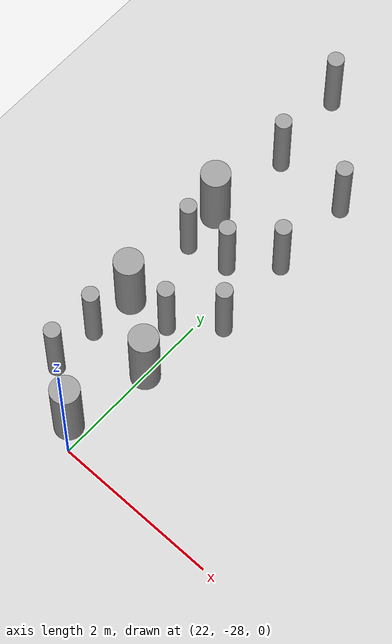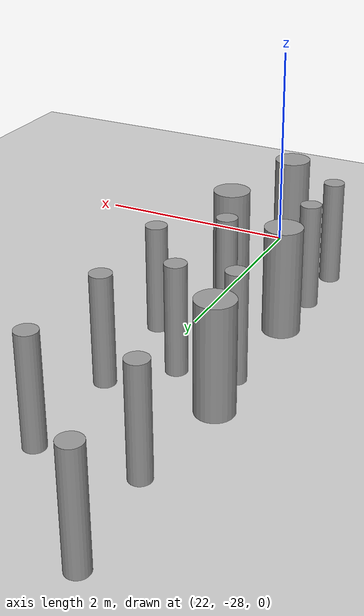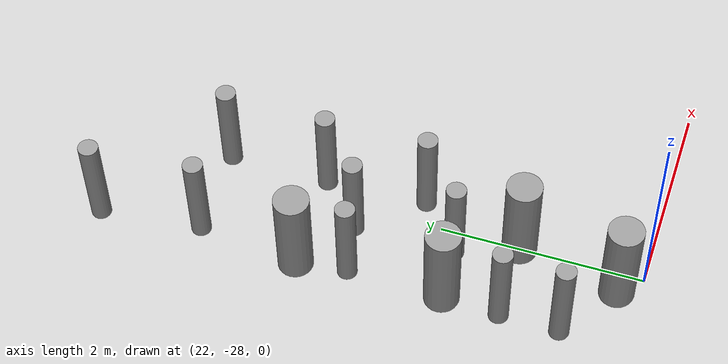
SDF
<sdf version="1.6">
 <world name="default">
  <model name="ground_plane">
   <static>1</static>
   <link name="link">
    <collision name="collision">
     <geometry><plane><normal>0 0 1</normal><size>100 100</size></plane></geometry>
     <surface><friction><ode><mu>100</mu><mu2>50</mu2></ode></friction></surface>
    </collision>
    <visual name="visual">
     <cast_shadows>0</cast_shadows>
     <geometry><plane><normal>0 0 1</normal><size>100 100</size></plane></geometry>
     <material>
      <script><uri>file://media/materials/scripts/gazebo.material</uri><name>Gazebo/Grey</name></script>
     </material>
    </visual>
   </link>
  </model>
  <model name="cyl_wall_clone_clone_1_clone_1_clone_clone_clone_clone_2">
   <link name="link_0">
    <pose>-2.73893 -0.366465 0 0 -0 0</pose>
    <inertial>
     <mass>0.0374993</mass>
     <inertia>
      <ixx>0.00321281</ixx>
      <ixy>0</ixy>
      <ixz>0</ixz>
      <iyy>0.00321281</iyy>
      <iyz>0</iyz>
      <izz>0.000175774</izz>
     </inertia>
    </inertial>
    <visual name="visual">
     <geometry><cylinder><radius>0.0968661</radius><length>1</length></cylinder></geometry>
     <material>
      <lighting>1</lighting>
      <script><uri>file://media/materials/scripts/gazebo.material</uri><name>Gazebo/Grey</name></script>
      <ambient>0.3 0.3 0.3 1</ambient>
      <diffuse>0.7 0.7 0.7 1</diffuse>
      <specular>0.01 0.01 0.01 1</specular>
      <emissive>0 0 0 1</emissive>
     </material>
    </visual>
    <collision name="collision">
     <geometry><cylinder><radius>0.096866</radius><length>1</length></cylinder></geometry>
     <surface>
      <friction>
       <ode><mu>1</mu><mu2>1</mu2><fdir1>0 0 0</fdir1><slip1>0</slip1><slip2>0</slip2></ode>
       <torsional>
        <coefficient>1</coefficient>
        <patch_radius>0</patch_radius>
        <surface_radius>0</surface_radius>
        <use_patch_radius>1</use_patch_radius>
        <ode><slip>0</slip></ode>
       </torsional>
      </friction>
      <bounce><restitution_coefficient>0</restitution_coefficient><threshold>1e+06</threshold></bounce>
      <contact>
       <collide_without_contact>0</collide_without_contact>
       <collide_without_contact_bitmask>1</collide_without_contact_bitmask>
       <collide_bitmask>1</collide_bitmask>
       <ode>
        <soft_cfm>0</soft_cfm>
        <soft_erp>0.2</soft_erp>
        <kp>1e+13</kp>
        <kd>1</kd>
        <max_vel>0.01</max_vel>
        <min_depth>0</min_depth>
       </ode>
       <bullet>
        <split_impulse>1</split_impulse>
        <split_impulse_penetration_threshold>-0.01</split_impulse_penetration_threshold>
        <soft_cfm>0</soft_cfm>
        <soft_erp>0.2</soft_erp>
        <kp>1e+13</kp>
        <kd>1</kd>
       </bullet>
      </contact>
     </surface>
    </collision>
   </link>
   <link name="link_0_clone">
    <pose>-1.73893 0.61877 0 0 -0 0</pose>
    <inertial>
     <mass>0.0374993</mass>
     <inertia>
      <ixx>0.00321281</ixx>
      <ixy>0</ixy>
      <ixz>0</ixz>
      <iyy>0.00321281</iyy>
      <iyz>0</iyz>
      <izz>0.000175774</izz>
     </inertia>
    </inertial>
    <visual name="visual">
     <geometry><cylinder><radius>0.0968661</radius><length>1</length></cylinder></geometry>
     <material>
      <lighting>1</lighting>
      <script><uri>file://media/materials/scripts/gazebo.material</uri><name>Gazebo/Grey</name></script>
      <ambient>0.3 0.3 0.3 1</ambient>
      <diffuse>0.7 0.7 0.7 1</diffuse>
      <specular>0.01 0.01 0.01 1</specular>
      <emissive>0 0 0 1</emissive>
      <shader type="pixel"/>
     </material>
    </visual>
    <collision name="collision">
     <geometry><cylinder><radius>0.096866</radius><length>1</length></cylinder></geometry>
     <surface>
      <friction>
       <ode><mu>1</mu><mu2>1</mu2><fdir1>0 0 0</fdir1><slip1>0</slip1><slip2>0</slip2></ode>
       <torsional>
        <coefficient>1</coefficient>
        <patch_radius>0</patch_radius>
        <surface_radius>0</surface_radius>
        <use_patch_radius>1</use_patch_radius>
        <ode><slip>0</slip></ode>
       </torsional>
      </friction>
      <bounce><restitution_coefficient>0</restitution_coefficient><threshold>1e+06</threshold></bounce>
      <contact>
       <collide_without_contact>0</collide_without_contact>
       <collide_without_contact_bitmask>1</collide_without_contact_bitmask>
       <collide_bitmask>1</collide_bitmask>
       <ode>
        <soft_cfm>0</soft_cfm>
        <soft_erp>0.2</soft_erp>
        <kp>1e+13</kp>
        <kd>1</kd>
        <max_vel>0.01</max_vel>
        <min_depth>0</min_depth>
       </ode>
       <bullet>
        <split_impulse>1</split_impulse>
        <split_impulse_penetration_threshold>-0.01</split_impulse_penetration_threshold>
        <soft_cfm>0</soft_cfm>
        <soft_erp>0.2</soft_erp>
        <kp>1e+13</kp>
        <kd>1</kd>
       </bullet>
      </contact>
     </surface>
    </collision>
   </link>
   <link name="link_0_clone_clone">
    <pose>-0.327073 0.143919 0 0 -0 0</pose>
    <inertial>
     <mass>0.0374993</mass>
     <inertia>
      <ixx>0.00321281</ixx>
      <ixy>0</ixy>
      <ixz>0</ixz>
      <iyy>0.00321281</iyy>
      <iyz>0</iyz>
      <izz>0.000175774</izz>
     </inertia>
    </inertial>
    <visual name="visual">
     <geometry><cylinder><radius>0.0968661</radius><length>1</length></cylinder></geometry>
     <material>
      <lighting>1</lighting>
      <script><uri>file://media/materials/scripts/gazebo.material</uri><name>Gazebo/Grey</name></script>
      <ambient>0.3 0.3 0.3 1</ambient>
      <diffuse>0.7 0.7 0.7 1</diffuse>
      <specular>0.01 0.01 0.01 1</specular>
      <emissive>0 0 0 1</emissive>
      <shader type="pixel"/>
     </material>
    </visual>
    <collision name="collision">
     <geometry><cylinder><radius>0.096866</radius><length>1</length></cylinder></geometry>
     <surface>
      <friction>
       <ode><mu>1</mu><mu2>1</mu2><fdir1>0 0 0</fdir1><slip1>0</slip1><slip2>0</slip2></ode>
       <torsional>
        <coefficient>1</coefficient>
        <patch_radius>0</patch_radius>
        <surface_radius>0</surface_radius>
        <use_patch_radius>1</use_patch_radius>
        <ode><slip>0</slip></ode>
       </torsional>
      </friction>
      <bounce><restitution_coefficient>0</restitution_coefficient><threshold>1e+06</threshold></bounce>
      <contact>
       <collide_without_contact>0</collide_without_contact>
       <collide_without_contact_bitmask>1</collide_without_contact_bitmask>
       <collide_bitmask>1</collide_bitmask>
       <ode>
        <soft_cfm>0</soft_cfm>
        <soft_erp>0.2</soft_erp>
        <kp>1e+13</kp>
        <kd>1</kd>
        <max_vel>0.01</max_vel>
        <min_depth>0</min_depth>
       </ode>
       <bullet>
        <split_impulse>1</split_impulse>
        <split_impulse_penetration_threshold>-0.01</split_impulse_penetration_threshold>
        <soft_cfm>0</soft_cfm>
        <soft_erp>0.2</soft_erp>
        <kp>1e+13</kp>
        <kd>1</kd>
       </bullet>
      </contact>
     </surface>
    </collision>
   </link>
   <link name="link_0_clone_clone_0">
    <pose>1.26107 -0.419359 0 0 -0 0</pose>
    <inertial>
     <mass>0.0374993</mass>
     <inertia>
      <ixx>0.00321281</ixx>
      <ixy>0</ixy>
      <ixz>0</ixz>
      <iyy>0.00321281</iyy>
      <iyz>0</iyz>
      <izz>0.000175774</izz>
     </inertia>
    </inertial>
    <visual name="visual">
     <geometry><cylinder><radius>0.0968661</radius><length>1</length></cylinder></geometry>
     <material>
      <lighting>1</lighting>
      <script><uri>file://media/materials/scripts/gazebo.material</uri><name>Gazebo/Grey</name></script>
      <ambient>0.3 0.3 0.3 1</ambient>
      <diffuse>0.7 0.7 0.7 1</diffuse>
      <specular>0.01 0.01 0.01 1</specular>
      <emissive>0 0 0 1</emissive>
      <shader type="pixel"/>
     </material>
    </visual>
    <collision name="collision">
     <geometry><cylinder><radius>0.096866</radius><length>1</length></cylinder></geometry>
     <surface>
      <friction>
       <ode><mu>1</mu><mu2>1</mu2><fdir1>0 0 0</fdir1><slip1>0</slip1><slip2>0</slip2></ode>
       <torsional>
        <coefficient>1</coefficient>
        <patch_radius>0</patch_radius>
        <surface_radius>0</surface_radius>
        <use_patch_radius>1</use_patch_radius>
        <ode><slip>0</slip></ode>
       </torsional>
      </friction>
      <bounce><restitution_coefficient>0</restitution_coefficient><threshold>1e+06</threshold></bounce>
      <contact>
       <collide_without_contact>0</collide_without_contact>
       <collide_without_contact_bitmask>1</collide_without_contact_bitmask>
       <collide_bitmask>1</collide_bitmask>
       <ode>
        <soft_cfm>0</soft_cfm>
        <soft_erp>0.2</soft_erp>
        <kp>1e+13</kp>
        <kd>1</kd>
        <max_vel>0.01</max_vel>
        <min_depth>0</min_depth>
       </ode>
       <bullet>
        <split_impulse>1</split_impulse>
        <split_impulse_penetration_threshold>-0.01</split_impulse_penetration_threshold>
        <soft_cfm>0</soft_cfm>
        <soft_erp>0.2</soft_erp>
        <kp>1e+13</kp>
        <kd>1</kd>
       </bullet>
      </contact>
     </surface>
    </collision>
   </link>
   <link name="link_0_clone_clone_1">
    <pose>-1.73893 -0.277168 0 0 -0 0</pose>
    <inertial>
     <mass>0.0374993</mass>
     <inertia>
      <ixx>0.00321281</ixx>
      <ixy>0</ixy>
      <ixz>0</ixz>
      <iyy>0.00321281</iyy>
      <iyz>0</iyz>
      <izz>0.000175774</izz>
     </inertia>
    </inertial>
    <visual name="visual">
     <geometry><cylinder><radius>0.0968661</radius><length>1</length></cylinder></geometry>
     <material>
      <lighting>1</lighting>
      <script><uri>file://media/materials/scripts/gazebo.material</uri><name>Gazebo/Grey</name></script>
      <ambient>0.3 0.3 0.3 1</ambient>
      <diffuse>0.7 0.7 0.7 1</diffuse>
      <specular>0.01 0.01 0.01 1</specular>
      <emissive>0 0 0 1</emissive>
      <shader type="pixel"/>
     </material>
    </visual>
    <collision name="collision">
     <geometry><cylinder><radius>0.096866</radius><length>1</length></cylinder></geometry>
     <surface>
      <friction>
       <ode><mu>1</mu><mu2>1</mu2><fdir1>0 0 0</fdir1><slip1>0</slip1><slip2>0</slip2></ode>
       <torsional>
        <coefficient>1</coefficient>
        <patch_radius>0</patch_radius>
        <surface_radius>0</surface_radius>
        <use_patch_radius>1</use_patch_radius>
        <ode><slip>0</slip></ode>
       </torsional>
      </friction>
      <bounce><restitution_coefficient>0</restitution_coefficient><threshold>1e+06</threshold></bounce>
      <contact>
       <collide_without_contact>0</collide_without_contact>
       <collide_without_contact_bitmask>1</collide_without_contact_bitmask>
       <collide_bitmask>1</collide_bitmask>
       <ode>
        <soft_cfm>0</soft_cfm>
        <soft_erp>0.2</soft_erp>
        <kp>1e+13</kp>
        <kd>1</kd>
        <max_vel>0.01</max_vel>
        <min_depth>0</min_depth>
       </ode>
       <bullet>
        <split_impulse>1</split_impulse>
        <split_impulse_penetration_threshold>-0.01</split_impulse_penetration_threshold>
        <soft_cfm>0</soft_cfm>
        <soft_erp>0.2</soft_erp>
        <kp>1e+13</kp>
        <kd>1</kd>
       </bullet>
      </contact>
     </surface>
    </collision>
   </link>
   <link name="link_0_clone_clone_2">
    <pose>-0.738934 0.593961 0 0 -0 0</pose>
    <inertial>
     <mass>0.0374993</mass>
     <inertia>
      <ixx>0.00321281</ixx>
      <ixy>0</ixy>
      <ixz>0</ixz>
      <iyy>0.00321281</iyy>
      <iyz>0</iyz>
      <izz>0.000175774</izz>
     </inertia>
    </inertial>
    <visual name="visual">
     <geometry><cylinder><radius>0.0968661</radius><length>1</length></cylinder></geometry>
     <material>
      <lighting>1</lighting>
      <script><uri>file://media/materials/scripts/gazebo.material</uri><name>Gazebo/Grey</name></script>
      <ambient>0.3 0.3 0.3 1</ambient>
      <diffuse>0.7 0.7 0.7 1</diffuse>
      <specular>0.01 0.01 0.01 1</specular>
      <emissive>0 0 0 1</emissive>
      <shader type="pixel"/>
     </material>
    </visual>
    <collision name="collision">
     <geometry><cylinder><radius>0.096866</radius><length>1</length></cylinder></geometry>
     <surface>
      <friction>
       <ode><mu>1</mu><mu2>1</mu2><fdir1>0 0 0</fdir1><slip1>0</slip1><slip2>0</slip2></ode>
       <torsional>
        <coefficient>1</coefficient>
        <patch_radius>0</patch_radius>
        <surface_radius>0</surface_radius>
        <use_patch_radius>1</use_patch_radius>
        <ode><slip>0</slip></ode>
       </torsional>
      </friction>
      <bounce><restitution_coefficient>0</restitution_coefficient><threshold>1e+06</threshold></bounce>
      <contact>
       <collide_without_contact>0</collide_without_contact>
       <collide_without_contact_bitmask>1</collide_without_contact_bitmask>
       <collide_bitmask>1</collide_bitmask>
       <ode>
        <soft_cfm>0</soft_cfm>
        <soft_erp>0.2</soft_erp>
        <kp>1e+13</kp>
        <kd>1</kd>
        <max_vel>0.01</max_vel>
        <min_depth>0</min_depth>
       </ode>
       <bullet>
        <split_impulse>1</split_impulse>
        <split_impulse_penetration_threshold>-0.01</split_impulse_penetration_threshold>
        <soft_cfm>0</soft_cfm>
        <soft_erp>0.2</soft_erp>
        <kp>1e+13</kp>
        <kd>1</kd>
       </bullet>
      </contact>
     </surface>
    </collision>
   </link>
   <link name="link_0_clone_clone_3">
    <pose>0.261066 0.624849 0 0 -0 0</pose>
    <inertial>
     <mass>0.0374993</mass>
     <inertia>
      <ixx>0.00321281</ixx>
      <ixy>0</ixy>
      <ixz>0</ixz>
      <iyy>0.00321281</iyy>
      <iyz>0</iyz>
      <izz>0.000175774</izz>
     </inertia>
    </inertial>
    <visual name="visual">
     <geometry><cylinder><radius>0.0968661</radius><length>1</length></cylinder></geometry>
     <material>
      <lighting>1</lighting>
      <script><uri>file://media/materials/scripts/gazebo.material</uri><name>Gazebo/Grey</name></script>
      <ambient>0.3 0.3 0.3 1</ambient>
      <diffuse>0.7 0.7 0.7 1</diffuse>
      <specular>0.01 0.01 0.01 1</specular>
      <emissive>0 0 0 1</emissive>
      <shader type="pixel"/>
     </material>
    </visual>
    <collision name="collision">
     <geometry><cylinder><radius>0.096866</radius><length>1</length></cylinder></geometry>
     <surface>
      <friction>
       <ode><mu>1</mu><mu2>1</mu2><fdir1>0 0 0</fdir1><slip1>0</slip1><slip2>0</slip2></ode>
       <torsional>
        <coefficient>1</coefficient>
        <patch_radius>0</patch_radius>
        <surface_radius>0</surface_radius>
        <use_patch_radius>1</use_patch_radius>
        <ode><slip>0</slip></ode>
       </torsional>
      </friction>
      <bounce><restitution_coefficient>0</restitution_coefficient><threshold>1e+06</threshold></bounce>
      <contact>
       <collide_without_contact>0</collide_without_contact>
       <collide_without_contact_bitmask>1</collide_without_contact_bitmask>
       <collide_bitmask>1</collide_bitmask>
       <ode>
        <soft_cfm>0</soft_cfm>
        <soft_erp>0.2</soft_erp>
        <kp>1e+13</kp>
        <kd>1</kd>
        <max_vel>0.01</max_vel>
        <min_depth>0</min_depth>
       </ode>
       <bullet>
        <split_impulse>1</split_impulse>
        <split_impulse_penetration_threshold>-0.01</split_impulse_penetration_threshold>
        <soft_cfm>0</soft_cfm>
        <soft_erp>0.2</soft_erp>
        <kp>1e+13</kp>
        <kd>1</kd>
       </bullet>
      </contact>
     </surface>
    </collision>
   </link>
   <link name="link_0_clone_clone_4">
    <pose>-0.239049 -0.353105 0 0 -0 0</pose>
    <inertial>
     <mass>0.0374993</mass>
     <inertia>
      <ixx>0.00321281</ixx>
      <ixy>0</ixy>
      <ixz>0</ixz>
      <iyy>0.00321281</iyy>
      <iyz>0</iyz>
      <izz>0.000175774</izz>
     </inertia>
    </inertial>
    <visual name="visual">
     <geometry><cylinder><radius>0.0968661</radius><length>1</length></cylinder></geometry>
     <material>
      <lighting>1</lighting>
      <script><uri>file://media/materials/scripts/gazebo.material</uri><name>Gazebo/Grey</name></script>
      <ambient>0.3 0.3 0.3 1</ambient>
      <diffuse>0.7 0.7 0.7 1</diffuse>
      <specular>0.01 0.01 0.01 1</specular>
      <emissive>0 0 0 1</emissive>
      <shader type="pixel"/>
     </material>
    </visual>
    <collision name="collision">
     <geometry><cylinder><radius>0.096866</radius><length>1</length></cylinder></geometry>
     <surface>
      <friction>
       <ode><mu>1</mu><mu2>1</mu2><fdir1>0 0 0</fdir1><slip1>0</slip1><slip2>0</slip2></ode>
       <torsional>
        <coefficient>1</coefficient>
        <patch_radius>0</patch_radius>
        <surface_radius>0</surface_radius>
        <use_patch_radius>1</use_patch_radius>
        <ode><slip>0</slip></ode>
       </torsional>
      </friction>
      <bounce><restitution_coefficient>0</restitution_coefficient><threshold>1e+06</threshold></bounce>
      <contact>
       <collide_without_contact>0</collide_without_contact>
       <collide_without_contact_bitmask>1</collide_without_contact_bitmask>
       <collide_bitmask>1</collide_bitmask>
       <ode>
        <soft_cfm>0</soft_cfm>
        <soft_erp>0.2</soft_erp>
        <kp>1e+13</kp>
        <kd>1</kd>
        <max_vel>0.01</max_vel>
        <min_depth>0</min_depth>
       </ode>
       <bullet>
        <split_impulse>1</split_impulse>
        <split_impulse_penetration_threshold>-0.01</split_impulse_penetration_threshold>
        <soft_cfm>0</soft_cfm>
        <soft_erp>0.2</soft_erp>
        <kp>1e+13</kp>
        <kd>1</kd>
       </bullet>
      </contact>
     </surface>
    </collision>
   </link>
   <link name="link_0_clone_clone_5">
    <pose>0.672792 0.143919 0 0 -0 0</pose>
    <inertial>
     <mass>0.0374993</mass>
     <inertia>
      <ixx>0.00321281</ixx>
      <ixy>0</ixy>
      <ixz>0</ixz>
      <iyy>0.00321281</iyy>
      <iyz>0</iyz>
      <izz>0.000175774</izz>
     </inertia>
    </inertial>
    <visual name="visual">
     <geometry><cylinder><radius>0.0968661</radius><length>1</length></cylinder></geometry>
     <material>
      <lighting>1</lighting>
      <script><uri>file://media/materials/scripts/gazebo.material</uri><name>Gazebo/Grey</name></script>
      <ambient>0.3 0.3 0.3 1</ambient>
      <diffuse>0.7 0.7 0.7 1</diffuse>
      <specular>0.01 0.01 0.01 1</specular>
      <emissive>0 0 0 1</emissive>
      <shader type="pixel"/>
     </material>
    </visual>
    <collision name="collision">
     <geometry><cylinder><radius>0.096866</radius><length>1</length></cylinder></geometry>
     <surface>
      <friction>
       <ode><mu>1</mu><mu2>1</mu2><fdir1>0 0 0</fdir1><slip1>0</slip1><slip2>0</slip2></ode>
       <torsional>
        <coefficient>1</coefficient>
        <patch_radius>0</patch_radius>
        <surface_radius>0</surface_radius>
        <use_patch_radius>1</use_patch_radius>
        <ode><slip>0</slip></ode>
       </torsional>
      </friction>
      <bounce><restitution_coefficient>0</restitution_coefficient><threshold>1e+06</threshold></bounce>
      <contact>
       <collide_without_contact>0</collide_without_contact>
       <collide_without_contact_bitmask>1</collide_without_contact_bitmask>
       <collide_bitmask>1</collide_bitmask>
       <ode>
        <soft_cfm>0</soft_cfm>
        <soft_erp>0.2</soft_erp>
        <kp>1e+13</kp>
        <kd>1</kd>
        <max_vel>0.01</max_vel>
        <min_depth>0</min_depth>
       </ode>
       <bullet>
        <split_impulse>1</split_impulse>
        <split_impulse_penetration_threshold>-0.01</split_impulse_penetration_threshold>
        <soft_cfm>0</soft_cfm>
        <soft_erp>0.2</soft_erp>
        <kp>1e+13</kp>
        <kd>1</kd>
       </bullet>
      </contact>
     </surface>
    </collision>
   </link>
   <link name="link_0_clone_clone_6">
    <pose>1.84596 -0.433423 0 0 -0 0</pose>
    <inertial>
     <mass>0.0374993</mass>
     <inertia>
      <ixx>0.00321281</ixx>
      <ixy>0</ixy>
      <ixz>0</ixz>
      <iyy>0.00321281</iyy>
      <iyz>0</iyz>
      <izz>0.000175774</izz>
     </inertia>
    </inertial>
    <visual name="visual">
     <geometry><cylinder><radius>0.0968661</radius><length>1</length></cylinder></geometry>
     <material>
      <lighting>1</lighting>
      <script><uri>file://media/materials/scripts/gazebo.material</uri><name>Gazebo/Grey</name></script>
      <ambient>0.3 0.3 0.3 1</ambient>
      <diffuse>0.7 0.7 0.7 1</diffuse>
      <specular>0.01 0.01 0.01 1</specular>
      <emissive>0 0 0 1</emissive>
      <shader type="pixel"/>
     </material>
    </visual>
    <collision name="collision">
     <geometry><cylinder><radius>0.096866</radius><length>1</length></cylinder></geometry>
     <surface>
      <friction>
       <ode><mu>1</mu><mu2>1</mu2><fdir1>0 0 0</fdir1><slip1>0</slip1><slip2>0</slip2></ode>
       <torsional>
        <coefficient>1</coefficient>
        <patch_radius>0</patch_radius>
        <surface_radius>0</surface_radius>
        <use_patch_radius>1</use_patch_radius>
        <ode><slip>0</slip></ode>
       </torsional>
      </friction>
      <bounce><restitution_coefficient>0</restitution_coefficient><threshold>1e+06</threshold></bounce>
      <contact>
       <collide_without_contact>0</collide_without_contact>
       <collide_without_contact_bitmask>1</collide_without_contact_bitmask>
       <collide_bitmask>1</collide_bitmask>
       <ode>
        <soft_cfm>0</soft_cfm>
        <soft_erp>0.2</soft_erp>
        <kp>1e+13</kp>
        <kd>1</kd>
        <max_vel>0.01</max_vel>
        <min_depth>0</min_depth>
       </ode>
       <bullet>
        <split_impulse>1</split_impulse>
        <split_impulse_penetration_threshold>-0.01</split_impulse_penetration_threshold>
        <soft_cfm>0</soft_cfm>
        <soft_erp>0.2</soft_erp>
        <kp>1e+13</kp>
        <kd>1</kd>
       </bullet>
      </contact>
     </surface>
    </collision>
   </link>
   <link name="link_1">
    <pose>-0.738934 -0.397931 0 0 -0 0</pose>
    <inertial>
     <mass>0.117398</mass>
     <inertia>
      <ixx>0.0106445</ixx>
      <ixy>0</ixy>
      <ixz>0</ixz>
      <iyy>0.0106445</iyy>
      <iyz>0</iyz>
      <izz>0.00172278</izz>
     </inertia>
    </inertial>
    <visual name="visual">
     <geometry><cylinder><radius>0.171317</radius><length>1</length></cylinder></geometry>
     <material>
      <lighting>1</lighting>
      <script><uri>file://media/materials/scripts/gazebo.material</uri><name>Gazebo/Grey</name></script>
      <ambient>0.3 0.3 0.3 1</ambient>
      <diffuse>0.7 0.7 0.7 1</diffuse>
      <specular>0.01 0.01 0.01 1</specular>
      <emissive>0 0 0 1</emissive>
     </material>
    </visual>
    <collision name="collision">
     <geometry><cylinder><radius>0.171317</radius><length>1</length></cylinder></geometry>
     <surface>
      <friction>
       <ode><mu>1</mu><mu2>1</mu2><fdir1>0 0 0</fdir1><slip1>0</slip1><slip2>0</slip2></ode>
       <torsional>
        <coefficient>1</coefficient>
        <patch_radius>0</patch_radius>
        <surface_radius>0</surface_radius>
        <use_patch_radius>1</use_patch_radius>
        <ode><slip>0</slip></ode>
       </torsional>
      </friction>
      <bounce><restitution_coefficient>0</restitution_coefficient><threshold>1e+06</threshold></bounce>
      <contact>
       <collide_without_contact>0</collide_without_contact>
       <collide_without_contact_bitmask>1</collide_without_contact_bitmask>
       <collide_bitmask>1</collide_bitmask>
       <ode>
        <soft_cfm>0</soft_cfm>
        <soft_erp>0.2</soft_erp>
        <kp>1e+13</kp>
        <kd>1</kd>
        <max_vel>0.01</max_vel>
        <min_depth>0</min_depth>
       </ode>
       <bullet>
        <split_impulse>1</split_impulse>
        <split_impulse_penetration_threshold>-0.01</split_impulse_penetration_threshold>
        <soft_cfm>0</soft_cfm>
        <soft_erp>0.2</soft_erp>
        <kp>1e+13</kp>
        <kd>1</kd>
       </bullet>
      </contact>
     </surface>
    </collision>
   </link>
   <link name="link_1_clone">
    <pose>0.697784 -0.380861 0 0 -0 0</pose>
    <inertial>
     <mass>0.117398</mass>
     <inertia>
      <ixx>0.0106445</ixx>
      <ixy>0</ixy>
      <ixz>0</ixz>
      <iyy>0.0106445</iyy>
      <iyz>0</iyz>
      <izz>0.00172278</izz>
     </inertia>
    </inertial>
    <visual name="visual">
     <geometry><cylinder><radius>0.171317</radius><length>1</length></cylinder></geometry>
     <material>
      <lighting>1</lighting>
      <script><uri>file://media/materials/scripts/gazebo.material</uri><name>Gazebo/Grey</name></script>
      <ambient>0.3 0.3 0.3 1</ambient>
      <diffuse>0.7 0.7 0.7 1</diffuse>
      <specular>0.01 0.01 0.01 1</specular>
      <emissive>0 0 0 1</emissive>
      <shader type="pixel"/>
     </material>
    </visual>
    <collision name="collision">
     <geometry><cylinder><radius>0.171317</radius><length>1</length></cylinder></geometry>
     <surface>
      <friction>
       <ode><mu>1</mu><mu2>1</mu2><fdir1>0 0 0</fdir1><slip1>0</slip1><slip2>0</slip2></ode>
       <torsional>
        <coefficient>1</coefficient>
        <patch_radius>0</patch_radius>
        <surface_radius>0</surface_radius>
        <use_patch_radius>1</use_patch_radius>
        <ode><slip>0</slip></ode>
       </torsional>
      </friction>
      <bounce><restitution_coefficient>0</restitution_coefficient><threshold>1e+06</threshold></bounce>
      <contact>
       <collide_without_contact>0</collide_without_contact>
       <collide_without_contact_bitmask>1</collide_without_contact_bitmask>
       <collide_bitmask>1</collide_bitmask>
       <ode>
        <soft_cfm>0</soft_cfm>
        <soft_erp>0.2</soft_erp>
        <kp>1e+13</kp>
        <kd>1</kd>
        <max_vel>0.01</max_vel>
        <min_depth>0</min_depth>
       </ode>
       <bullet>
        <split_impulse>1</split_impulse>
        <split_impulse_penetration_threshold>-0.01</split_impulse_penetration_threshold>
        <soft_cfm>0</soft_cfm>
        <soft_erp>0.2</soft_erp>
        <kp>1e+13</kp>
        <kd>1</kd>
       </bullet>
      </contact>
     </surface>
    </collision>
   </link>
   <link name="link_1_clone_0">
    <pose>1.26107 0.358974 0 0 -0 0</pose>
    <inertial>
     <mass>0.117398</mass>
     <inertia>
      <ixx>0.0106445</ixx>
      <ixy>0</ixy>
      <ixz>0</ixz>
      <iyy>0.0106445</iyy>
      <iyz>0</iyz>
      <izz>0.00172278</izz>
     </inertia>
    </inertial>
    <visual name="visual">
     <geometry><cylinder><radius>0.171317</radius><length>1</length></cylinder></geometry>
     <material>
      <lighting>1</lighting>
      <script><uri>file://media/materials/scripts/gazebo.material</uri><name>Gazebo/Grey</name></script>
      <ambient>0.3 0.3 0.3 1</ambient>
      <diffuse>0.7 0.7 0.7 1</diffuse>
      <specular>0.01 0.01 0.01 1</specular>
      <emissive>0 0 0 1</emissive>
      <shader type="pixel"/>
     </material>
    </visual>
    <collision name="collision">
     <geometry><cylinder><radius>0.171317</radius><length>1</length></cylinder></geometry>
     <surface>
      <friction>
       <ode><mu>1</mu><mu2>1</mu2><fdir1>0 0 0</fdir1><slip1>0</slip1><slip2>0</slip2></ode>
       <torsional>
        <coefficient>1</coefficient>
        <patch_radius>0</patch_radius>
        <surface_radius>0</surface_radius>
        <use_patch_radius>1</use_patch_radius>
        <ode><slip>0</slip></ode>
       </torsional>
      </friction>
      <bounce><restitution_coefficient>0</restitution_coefficient><threshold>1e+06</threshold></bounce>
      <contact>
       <collide_without_contact>0</collide_without_contact>
       <collide_without_contact_bitmask>1</collide_without_contact_bitmask>
       <collide_bitmask>1</collide_bitmask>
       <ode>
        <soft_cfm>0</soft_cfm>
        <soft_erp>0.2</soft_erp>
        <kp>1e+13</kp>
        <kd>1</kd>
        <max_vel>0.01</max_vel>
        <min_depth>0</min_depth>
       </ode>
       <bullet>
        <split_impulse>1</split_impulse>
        <split_impulse_penetration_threshold>-0.01</split_impulse_penetration_threshold>
        <soft_cfm>0</soft_cfm>
        <soft_erp>0.2</soft_erp>
        <kp>1e+13</kp>
        <kd>1</kd>
       </bullet>
      </contact>
     </surface>
    </collision>
   </link>
   <link name="link_1_clone_1">
    <pose>2.26107 0.143919 0 0 -0 0</pose>
    <inertial>
     <mass>0.117398</mass>
     <inertia>
      <ixx>0.0106445</ixx>
      <ixy>0</ixy>
      <ixz>0</ixz>
      <iyy>0.0106445</iyy>
      <iyz>0</iyz>
      <izz>0.00172278</izz>
     </inertia>
    </inertial>
    <visual name="visual">
     <geometry><cylinder><radius>0.171317</radius><length>1</length></cylinder></geometry>
     <material>
      <lighting>1</lighting>
      <script><uri>file://media/materials/scripts/gazebo.material</uri><name>Gazebo/Grey</name></script>
      <ambient>0.3 0.3 0.3 1</ambient>
      <diffuse>0.7 0.7 0.7 1</diffuse>
      <specular>0.01 0.01 0.01 1</specular>
      <emissive>0 0 0 1</emissive>
      <shader type="pixel"/>
     </material>
    </visual>
    <collision name="collision">
     <geometry><cylinder><radius>0.171317</radius><length>1</length></cylinder></geometry>
     <surface>
      <friction>
       <ode><mu>1</mu><mu2>1</mu2><fdir1>0 0 0</fdir1><slip1>0</slip1><slip2>0</slip2></ode>
       <torsional>
        <coefficient>1</coefficient>
        <patch_radius>0</patch_radius>
        <surface_radius>0</surface_radius>
        <use_patch_radius>1</use_patch_radius>
        <ode><slip>0</slip></ode>
       </torsional>
      </friction>
      <bounce><restitution_coefficient>0</restitution_coefficient><threshold>1e+06</threshold></bounce>
      <contact>
       <collide_without_contact>0</collide_without_contact>
       <collide_without_contact_bitmask>1</collide_without_contact_bitmask>
       <collide_bitmask>1</collide_bitmask>
       <ode>
        <soft_cfm>0</soft_cfm>
        <soft_erp>0.2</soft_erp>
        <kp>1e+13</kp>
        <kd>1</kd>
        <max_vel>0.01</max_vel>
        <min_depth>0</min_depth>
       </ode>
       <bullet>
        <split_impulse>1</split_impulse>
        <split_impulse_penetration_threshold>-0.01</split_impulse_penetration_threshold>
        <soft_cfm>0</soft_cfm>
        <soft_erp>0.2</soft_erp>
        <kp>1e+13</kp>
        <kd>1</kd>
       </bullet>
      </contact>
     </surface>
    </collision>
   </link>
   <static>1</static>
   <pose>21.6257 -25.518 0.5 0 0 -1.55814</pose>
  </model>
 </world>
</sdf>
